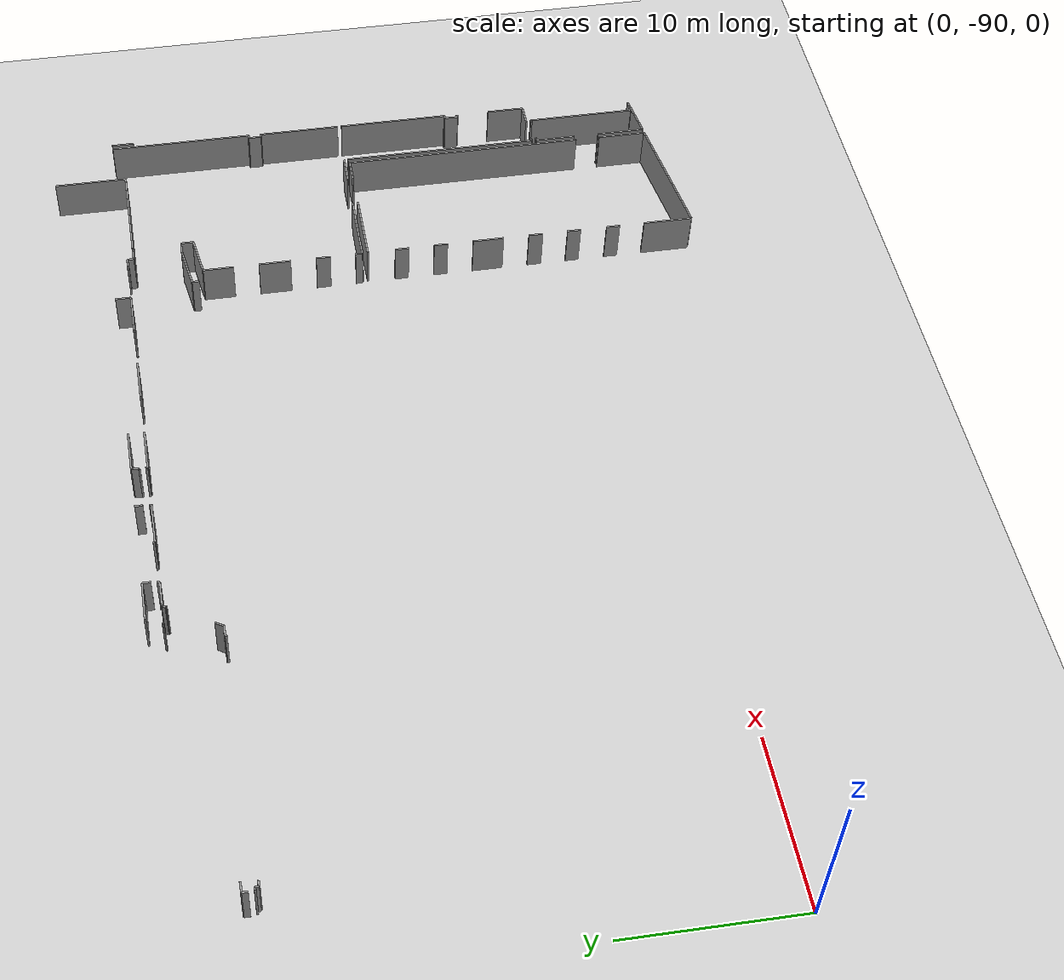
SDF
<sdf version="1.6">
 <world name="default">
  <model name="ground_plane">
   <static>1</static>
   <link name="link">
    <collision name="collision">
     <geometry><plane><normal>0 0 1</normal><size>100 100</size></plane></geometry>
     <surface><friction><ode><mu>100</mu><mu2>50</mu2></ode></friction></surface>
    </collision>
    <visual name="visual">
     <cast_shadows>0</cast_shadows>
     <geometry><plane><normal>0 0 1</normal><size>100 100</size></plane></geometry>
     <material>
      <script><uri>file://media/materials/scripts/gazebo.material</uri><name>Gazebo/Grey</name></script>
     </material>
    </visual>
   </link>
  </model>
  <model name="0510045925_40">
   <static>1</static>
   <link name="Wall_1709">
    <collision name="Wall_1709_Collision">
     <geometry><box><size>2.58318316794 0.1 2.5</size></box></geometry>
     <pose>1.29159158397 0 1.25 0 0 0</pose>
    </collision>
    <visual name="Wall_1709_Visual">
     <pose>1.29159158397 0 1.25 0 0 0</pose>
     <geometry><box><size>2.58318316794 0.1 2.5</size></box></geometry>
     <material>
      <script><uri>file://media/materials/scripts/gazebo.material</uri><name>Gazebo/Grey</name></script>
      <ambient>1 1 1 1</ambient>
     </material>
    </visual>
    <pose>167.079820309 -160.35118398 0 0 0 3.14159265359</pose>
   </link>
   <link name="Wall_1710">
    <collision name="Wall_1710_Collision">
     <geometry><box><size>0.447196771656 0.1 2.5</size></box></geometry>
     <pose>0.223598385828 0 1.25 0 0 0</pose>
    </collision>
    <visual name="Wall_1710_Visual">
     <pose>0.223598385828 0 1.25 0 0 0</pose>
     <geometry><box><size>0.447196771656 0.1 2.5</size></box></geometry>
     <material>
      <script><uri>file://media/materials/scripts/gazebo.material</uri><name>Gazebo/Grey</name></script>
      <ambient>1 1 1 1</ambient>
     </material>
    </visual>
    <pose>164.496637141 -160.35118398 0 0 0 -1.57079632679</pose>
   </link>
   <link name="Wall_1711">
    <collision name="Wall_1711_Collision">
     <geometry><box><size>0.0888302327352 0.1 2.5</size></box></geometry>
     <pose>0.0444151163676 0 1.25 0 0 0</pose>
    </collision>
    <visual name="Wall_1711_Visual">
     <pose>0.0444151163676 0 1.25 0 0 0</pose>
     <geometry><box><size>0.0888302327352 0.1 2.5</size></box></geometry>
     <material>
      <script><uri>file://media/materials/scripts/gazebo.material</uri><name>Gazebo/Grey</name></script>
      <ambient>1 1 1 1</ambient>
     </material>
    </visual>
    <pose>164.496637141 -160.798380752 0 0 0 3.14159265359</pose>
   </link>
   <link name="Wall_1712">
    <collision name="Wall_1712_Collision">
     <geometry><box><size>0.463440014213 0.1 2.5</size></box></geometry>
     <pose>0.231720007106 0 1.25 0 0 0</pose>
    </collision>
    <visual name="Wall_1712_Visual">
     <pose>0.231720007106 0 1.25 0 0 0</pose>
     <geometry><box><size>0.463440014213 0.1 2.5</size></box></geometry>
     <material>
      <script><uri>file://media/materials/scripts/gazebo.material</uri><name>Gazebo/Grey</name></script>
      <ambient>1 1 1 1</ambient>
     </material>
    </visual>
    <pose>161.87005406 -160.798380752 0 0 0 1.57079632679</pose>
   </link>
   <link name="Wall_1718">
    <collision name="Wall_1718_Collision">
     <geometry><box><size>0.171569249511 0.1 2.5</size></box></geometry>
     <pose>0.0857846247557 0 1.25 0 0 0</pose>
    </collision>
    <visual name="Wall_1718_Visual">
     <pose>0.0857846247557 0 1.25 0 0 0</pose>
     <geometry><box><size>0.171569249511 0.1 2.5</size></box></geometry>
     <material>
      <script><uri>file://media/materials/scripts/gazebo.material</uri><name>Gazebo/Grey</name></script>
      <ambient>1 1 1 1</ambient>
     </material>
    </visual>
    <pose>137.894012842 -164.340676633 0 0 0 0.0</pose>
   </link>
   <link name="Wall_1719">
    <collision name="Wall_1719_Collision">
     <geometry><box><size>0.206086139946 0.1 2.5</size></box></geometry>
     <pose>0.103043069973 0 1.25 0 0 0</pose>
    </collision>
    <visual name="Wall_1719_Visual">
     <pose>0.103043069973 0 1.25 0 0 0</pose>
     <geometry><box><size>0.206086139946 0.1 2.5</size></box></geometry>
     <material>
      <script><uri>file://media/materials/scripts/gazebo.material</uri><name>Gazebo/Grey</name></script>
      <ambient>1 1 1 1</ambient>
     </material>
    </visual>
    <pose>138.065582092 -164.340676633 0 0 0 -1.57079632679</pose>
   </link>
   <link name="Wall_1720">
    <collision name="Wall_1720_Collision">
     <geometry><box><size>0.311921017233 0.1 2.5</size></box></geometry>
     <pose>0.155960508617 0 1.25 0 0 0</pose>
    </collision>
    <visual name="Wall_1720_Visual">
     <pose>0.155960508617 0 1.25 0 0 0</pose>
     <geometry><box><size>0.311921017233 0.1 2.5</size></box></geometry>
     <material>
      <script><uri>file://media/materials/scripts/gazebo.material</uri><name>Gazebo/Grey</name></script>
      <ambient>1 1 1 1</ambient>
     </material>
    </visual>
    <pose>138.065582092 -164.546762773 0 0 0 0.0</pose>
   </link>
   <link name="Wall_1721">
    <collision name="Wall_1721_Collision">
     <geometry><box><size>0.0609121595898 0.1 2.5</size></box></geometry>
     <pose>0.0304560797949 0 1.25 0 0 0</pose>
    </collision>
    <visual name="Wall_1721_Visual">
     <pose>0.0304560797949 0 1.25 0 0 0</pose>
     <geometry><box><size>0.0609121595898 0.1 2.5</size></box></geometry>
     <material>
      <script><uri>file://media/materials/scripts/gazebo.material</uri><name>Gazebo/Grey</name></script>
      <ambient>1 1 1 1</ambient>
     </material>
    </visual>
    <pose>138.377503109 -164.546762773 0 0 0 1.57079632679</pose>
   </link>
   <link name="Wall_1722">
    <collision name="Wall_1722_Collision">
     <geometry><box><size>0.108626684602 0.1 2.5</size></box></geometry>
     <pose>0.054313342301 0 1.25 0 0 0</pose>
    </collision>
    <visual name="Wall_1722_Visual">
     <pose>0.054313342301 0 1.25 0 0 0</pose>
     <geometry><box><size>0.108626684602 0.1 2.5</size></box></geometry>
     <material>
      <script><uri>file://media/materials/scripts/gazebo.material</uri><name>Gazebo/Grey</name></script>
      <ambient>1 1 1 1</ambient>
     </material>
    </visual>
    <pose>152.666988148 -164.485850613 0 0 0 1.57079632679</pose>
   </link>
   <link name="Wall_1723">
    <collision name="Wall_1723_Collision">
     <geometry><box><size>0.621811629146 0.1 2.5</size></box></geometry>
     <pose>0.310905814573 0 1.25 0 0 0</pose>
    </collision>
    <visual name="Wall_1723_Visual">
     <pose>0.310905814573 0 1.25 0 0 0</pose>
     <geometry><box><size>0.621811629146 0.1 2.5</size></box></geometry>
     <material>
      <script><uri>file://media/materials/scripts/gazebo.material</uri><name>Gazebo/Grey</name></script>
      <ambient>1 1 1 1</ambient>
     </material>
    </visual>
    <pose>152.666988148 -164.377223928 0 0 0 0.0</pose>
   </link>
   <link name="Wall_1724">
    <collision name="Wall_1724_Collision">
     <geometry><box><size>0.511980551243 0.1 2.5</size></box></geometry>
     <pose>0.255990275622 0 1.25 0 0 0</pose>
    </collision>
    <visual name="Wall_1724_Visual">
     <pose>0.255990275622 0 1.25 0 0 0</pose>
     <geometry><box><size>0.511980551243 0.1 2.5</size></box></geometry>
     <material>
      <script><uri>file://media/materials/scripts/gazebo.material</uri><name>Gazebo/Grey</name></script>
      <ambient>1 1 1 1</ambient>
     </material>
    </visual>
    <pose>153.288799777 -164.377223928 0 0 0 1.02102494817</pose>
   </link>
   <link name="Wall_1725">
    <collision name="Wall_1725_Collision">
     <geometry><box><size>0.0917235743611 0.1 2.5</size></box></geometry>
     <pose>0.0458617871806 0 1.25 0 0 0</pose>
    </collision>
    <visual name="Wall_1725_Visual">
     <pose>0.0458617871806 0 1.25 0 0 0</pose>
     <geometry><box><size>0.0917235743611 0.1 2.5</size></box></geometry>
     <material>
      <script><uri>file://media/materials/scripts/gazebo.material</uri><name>Gazebo/Grey</name></script>
      <ambient>1 1 1 1</ambient>
     </material>
    </visual>
    <pose>154.990787036 -161.518159438 0 0 0 2.54514819379</pose>
   </link>
   <link name="Wall_1726">
    <collision name="Wall_1726_Collision">
     <geometry><box><size>0.209064128685 0.1 2.5</size></box></geometry>
     <pose>0.104532064343 0 1.25 0 0 0</pose>
    </collision>
    <visual name="Wall_1726_Visual">
     <pose>0.104532064343 0 1.25 0 0 0</pose>
     <geometry><box><size>0.209064128685 0.1 2.5</size></box></geometry>
     <material>
      <script><uri>file://media/materials/scripts/gazebo.material</uri><name>Gazebo/Grey</name></script>
      <ambient>1 1 1 1</ambient>
     </material>
    </visual>
    <pose>154.914900637 -161.466637903 0 0 0 0.979763429492</pose>
   </link>
   <link name="Wall_1727">
    <collision name="Wall_1727_Collision">
     <geometry><box><size>1.57864013604 0.1 2.5</size></box></geometry>
     <pose>0.789320068019 0 1.25 0 0 0</pose>
    </collision>
    <visual name="Wall_1727_Visual">
     <pose>0.789320068019 0 1.25 0 0 0</pose>
     <geometry><box><size>1.57864013604 0.1 2.5</size></box></geometry>
     <material>
      <script><uri>file://media/materials/scripts/gazebo.material</uri><name>Gazebo/Grey</name></script>
      <ambient>1 1 1 1</ambient>
     </material>
    </visual>
    <pose>155.031395142 -161.293038248 0 0 0 0.0</pose>
   </link>
   <link name="Wall_1728">
    <collision name="Wall_1728_Collision">
     <geometry><box><size>0.153803202964 0.1 2.5</size></box></geometry>
     <pose>0.0769016014822 0 1.25 0 0 0</pose>
    </collision>
    <visual name="Wall_1728_Visual">
     <pose>0.0769016014822 0 1.25 0 0 0</pose>
     <geometry><box><size>0.153803202964 0.1 2.5</size></box></geometry>
     <material>
      <script><uri>file://media/materials/scripts/gazebo.material</uri><name>Gazebo/Grey</name></script>
      <ambient>1 1 1 1</ambient>
     </material>
    </visual>
    <pose>156.610035278 -161.293038248 0 0 0 1.57079632679</pose>
   </link>
   <link name="Wall_1729">
    <collision name="Wall_1729_Collision">
     <geometry><box><size>0.118524910535 0.1 2.5</size></box></geometry>
     <pose>0.0592624552676 0 1.25 0 0 0</pose>
    </collision>
    <visual name="Wall_1729_Visual">
     <pose>0.0592624552676 0 1.25 0 0 0</pose>
     <geometry><box><size>0.118524910535 0.1 2.5</size></box></geometry>
     <material>
      <script><uri>file://media/materials/scripts/gazebo.material</uri><name>Gazebo/Grey</name></script>
      <ambient>1 1 1 1</ambient>
     </material>
    </visual>
    <pose>159.249054593 -161.139235045 0 0 0 -1.57079632679</pose>
   </link>
   <link name="Wall_1730">
    <collision name="Wall_1730_Collision">
     <geometry><box><size>2.59561940052 0.1 2.5</size></box></geometry>
     <pose>1.29780970026 0 1.25 0 0 0</pose>
    </collision>
    <visual name="Wall_1730_Visual">
     <pose>1.29780970026 0 1.25 0 0 0</pose>
     <geometry><box><size>2.59561940052 0.1 2.5</size></box></geometry>
     <material>
      <script><uri>file://media/materials/scripts/gazebo.material</uri><name>Gazebo/Grey</name></script>
      <ambient>1 1 1 1</ambient>
     </material>
    </visual>
    <pose>159.249054593 -161.257759955 0 0 0 0.0</pose>
   </link>
   <link name="Wall_1731">
    <collision name="Wall_1731_Collision">
     <geometry><box><size>0.11928631253 0.1 2.5</size></box></geometry>
     <pose>0.0596431562651 0 1.25 0 0 0</pose>
    </collision>
    <visual name="Wall_1731_Visual">
     <pose>0.0596431562651 0 1.25 0 0 0</pose>
     <geometry><box><size>0.11928631253 0.1 2.5</size></box></geometry>
     <material>
      <script><uri>file://media/materials/scripts/gazebo.material</uri><name>Gazebo/Grey</name></script>
      <ambient>1 1 1 1</ambient>
     </material>
    </visual>
    <pose>161.844673993 -161.257759955 0 0 0 1.57079632679</pose>
   </link>
   <link name="Wall_1732">
    <collision name="Wall_1732_Collision">
     <geometry><box><size>0.12283952184 0.1 2.5</size></box></geometry>
     <pose>0.0614197609198 0 1.25 0 0 0</pose>
    </collision>
    <visual name="Wall_1732_Visual">
     <pose>0.0614197609198 0 1.25 0 0 0</pose>
     <geometry><box><size>0.12283952184 0.1 2.5</size></box></geometry>
     <material>
      <script><uri>file://media/materials/scripts/gazebo.material</uri><name>Gazebo/Grey</name></script>
      <ambient>1 1 1 1</ambient>
     </material>
    </visual>
    <pose>164.476079287 -161.138473643 0 0 0 -1.57079632679</pose>
   </link>
   <link name="Wall_1733">
    <collision name="Wall_1733_Collision">
     <geometry><box><size>2.61846146037 0.1 2.5</size></box></geometry>
     <pose>1.30923073018 0 1.25 0 0 0</pose>
    </collision>
    <visual name="Wall_1733_Visual">
     <pose>1.30923073018 0 1.25 0 0 0</pose>
     <geometry><box><size>2.61846146037 0.1 2.5</size></box></geometry>
     <material>
      <script><uri>file://media/materials/scripts/gazebo.material</uri><name>Gazebo/Grey</name></script>
      <ambient>1 1 1 1</ambient>
     </material>
    </visual>
    <pose>164.476079287 -161.261313165 0 0 0 0.0</pose>
   </link>
   <link name="Wall_1734">
    <collision name="Wall_1734_Collision">
     <geometry><box><size>2.5400370549 0.1 2.5</size></box></geometry>
     <pose>1.27001852745 0 1.25 0 0 0</pose>
    </collision>
    <visual name="Wall_1734_Visual">
     <pose>1.27001852745 0 1.25 0 0 0</pose>
     <geometry><box><size>2.5400370549 0.1 2.5</size></box></geometry>
     <material>
      <script><uri>file://media/materials/scripts/gazebo.material</uri><name>Gazebo/Grey</name></script>
      <ambient>1 1 1 1</ambient>
     </material>
    </visual>
    <pose>169.75944773 -161.261313165 0 0 0 0.0</pose>
   </link>
   <link name="Wall_1735">
    <collision name="Wall_1735_Collision">
     <geometry><box><size>2.59536559986 0.1 2.5</size></box></geometry>
     <pose>1.29768279993 0 1.25 0 0 0</pose>
    </collision>
    <visual name="Wall_1735_Visual">
     <pose>1.29768279993 0 1.25 0 0 0</pose>
     <geometry><box><size>2.59536559986 0.1 2.5</size></box></geometry>
     <material>
      <script><uri>file://media/materials/scripts/gazebo.material</uri><name>Gazebo/Grey</name></script>
      <ambient>1 1 1 1</ambient>
     </material>
    </visual>
    <pose>174.980635009 -161.261313165 0 0 0 0.0</pose>
   </link>
   <link name="Wall_1736">
    <collision name="Wall_1736_Collision">
     <geometry><box><size>0.919519809142 0.1 2.5</size></box></geometry>
     <pose>0.459759904571 0 1.25 0 0 0</pose>
    </collision>
    <visual name="Wall_1736_Visual">
     <pose>0.459759904571 0 1.25 0 0 0</pose>
     <geometry><box><size>0.919519809142 0.1 2.5</size></box></geometry>
     <material>
      <script><uri>file://media/materials/scripts/gazebo.material</uri><name>Gazebo/Grey</name></script>
      <ambient>1 1 1 1</ambient>
     </material>
    </visual>
    <pose>177.576000609 -161.261313165 0 0 0 1.57079632679</pose>
   </link>
   <link name="Wall_1746">
    <collision name="Wall_1746_Collision">
     <geometry><box><size>0.548717037639 0.1 2.5</size></box></geometry>
     <pose>0.274358518819 0 1.25 0 0 0</pose>
    </collision>
    <visual name="Wall_1746_Visual">
     <pose>0.274358518819 0 1.25 0 0 0</pose>
     <geometry><box><size>0.548717037639 0.1 2.5</size></box></geometry>
     <material>
      <script><uri>file://media/materials/scripts/gazebo.material</uri><name>Gazebo/Grey</name></script>
      <ambient>1 1 1 1</ambient>
     </material>
    </visual>
    <pose>180.211974315 -161.271972793 0 0 0 0.0</pose>
   </link>
   <link name="Wall_1747">
    <collision name="Wall_1747_Collision">
     <geometry><box><size>0.387299814726 0.1 2.5</size></box></geometry>
     <pose>0.193649907363 0 1.25 0 0 0</pose>
    </collision>
    <visual name="Wall_1747_Visual">
     <pose>0.193649907363 0 1.25 0 0 0</pose>
     <geometry><box><size>0.387299814726 0.1 2.5</size></box></geometry>
     <material>
      <script><uri>file://media/materials/scripts/gazebo.material</uri><name>Gazebo/Grey</name></script>
      <ambient>1 1 1 1</ambient>
     </material>
    </visual>
    <pose>180.760691353 -161.271972793 0 0 0 -1.57079632679</pose>
   </link>
   <link name="Wall_1748">
    <collision name="Wall_1748_Collision">
     <geometry><box><size>0.635009263724 0.1 2.5</size></box></geometry>
     <pose>0.317504631862 0 1.25 0 0 0</pose>
    </collision>
    <visual name="Wall_1748_Visual">
     <pose>0.317504631862 0 1.25 0 0 0</pose>
     <geometry><box><size>0.635009263724 0.1 2.5</size></box></geometry>
     <material>
      <script><uri>file://media/materials/scripts/gazebo.material</uri><name>Gazebo/Grey</name></script>
      <ambient>1 1 1 1</ambient>
     </material>
    </visual>
    <pose>180.760691353 -161.659272607 0 0 0 0.0</pose>
   </link>
   <link name="Wall_1749">
    <collision name="Wall_1749_Collision">
     <geometry><box><size>0.569021090835 0.1 2.5</size></box></geometry>
     <pose>0.284510545418 0 1.25 0 0 0</pose>
    </collision>
    <visual name="Wall_1749_Visual">
     <pose>0.284510545418 0 1.25 0 0 0</pose>
     <geometry><box><size>0.569021090835 0.1 2.5</size></box></geometry>
     <material>
      <script><uri>file://media/materials/scripts/gazebo.material</uri><name>Gazebo/Grey</name></script>
      <ambient>1 1 1 1</ambient>
     </material>
    </visual>
    <pose>181.395700617 -164.582802467 0 0 0 3.14159265359</pose>
   </link>
   <link name="Wall_1750">
    <collision name="Wall_1750_Collision">
     <geometry><box><size>2.52662034332 0.1 2.5</size></box></geometry>
     <pose>1.26331017166 0 1.25 0 0 0</pose>
    </collision>
    <visual name="Wall_1750_Visual">
     <pose>1.26331017166 0 1.25 0 0 0</pose>
     <geometry><box><size>2.52662034332 0.1 2.5</size></box></geometry>
     <material>
      <script><uri>file://media/materials/scripts/gazebo.material</uri><name>Gazebo/Grey</name></script>
      <ambient>1 1 1 1</ambient>
     </material>
    </visual>
    <pose>180.826679526 -164.582802467 0 0 0 -2.99135665802</pose>
   </link>
   <link name="Wall_1751">
    <collision name="Wall_1751_Collision">
     <geometry><box><size>0.414456485876 0.1 2.5</size></box></geometry>
     <pose>0.207228242938 0 1.25 0 0 0</pose>
    </collision>
    <visual name="Wall_1751_Visual">
     <pose>0.207228242938 0 1.25 0 0 0</pose>
     <geometry><box><size>0.414456485876 0.1 2.5</size></box></geometry>
     <material>
      <script><uri>file://media/materials/scripts/gazebo.material</uri><name>Gazebo/Grey</name></script>
      <ambient>1 1 1 1</ambient>
     </material>
    </visual>
    <pose>178.328519581 -164.960965458 0 0 0 -1.57079632679</pose>
   </link>
   <link name="Wall_1757">
    <collision name="Wall_1757_Collision">
     <geometry><box><size>0.0738647146601 0.1 2.5</size></box></geometry>
     <pose>0.0369323573301 0 1.25 0 0 0</pose>
    </collision>
    <visual name="Wall_1757_Visual">
     <pose>0.0369323573301 0 1.25 0 0 0</pose>
     <geometry><box><size>0.0738647146601 0.1 2.5</size></box></geometry>
     <material>
      <script><uri>file://media/materials/scripts/gazebo.material</uri><name>Gazebo/Grey</name></script>
      <ambient>1 1 1 1</ambient>
     </material>
    </visual>
    <pose>153.861627877 -161.243293317 0 0 0 -0.537473132839</pose>
   </link>
   <link name="Wall_1758">
    <collision name="Wall_1758_Collision">
     <geometry><box><size>0.595923961321 0.1 2.5</size></box></geometry>
     <pose>0.29796198066 0 1.25 0 0 0</pose>
    </collision>
    <visual name="Wall_1758_Visual">
     <pose>0.29796198066 0 1.25 0 0 0</pose>
     <geometry><box><size>0.595923961321 0.1 2.5</size></box></geometry>
     <material>
      <script><uri>file://media/materials/scripts/gazebo.material</uri><name>Gazebo/Grey</name></script>
      <ambient>1 1 1 1</ambient>
     </material>
    </visual>
    <pose>138.458719322 -163.678256897 0 0 0 3.14159265359</pose>
   </link>
   <link name="Wall_1759">
    <collision name="Wall_1759_Collision">
     <geometry><box><size>0.330448465775 0.1 2.5</size></box></geometry>
     <pose>0.165224232887 0 1.25 0 0 0</pose>
    </collision>
    <visual name="Wall_1759_Visual">
     <pose>0.165224232887 0 1.25 0 0 0</pose>
     <geometry><box><size>0.330448465775 0.1 2.5</size></box></geometry>
     <material>
      <script><uri>file://media/materials/scripts/gazebo.material</uri><name>Gazebo/Grey</name></script>
      <ambient>1 1 1 1</ambient>
     </material>
    </visual>
    <pose>137.862795361 -163.678256897 0 0 0 -1.57079632679</pose>
   </link>
   <link name="Wall_1767">
    <collision name="Wall_1767_Collision">
     <geometry><box><size>0.471054034162 0.1 2.5</size></box></geometry>
     <pose>0.235527017081 0 1.25 0 0 0</pose>
    </collision>
    <visual name="Wall_1767_Visual">
     <pose>0.235527017081 0 1.25 0 0 0</pose>
     <geometry><box><size>0.471054034162 0.1 2.5</size></box></geometry>
     <material>
      <script><uri>file://media/materials/scripts/gazebo.material</uri><name>Gazebo/Grey</name></script>
      <ambient>1 1 1 1</ambient>
     </material>
    </visual>
    <pose>156.653435192 -160.82832923 0 0 0 1.57079632679</pose>
   </link>
   <link name="Wall_1768">
    <collision name="Wall_1768_Collision">
     <geometry><box><size>2.36091502476 0.1 2.5</size></box></geometry>
     <pose>1.18045751238 0 1.25 0 0 0</pose>
    </collision>
    <visual name="Wall_1768_Visual">
     <pose>1.18045751238 0 1.25 0 0 0</pose>
     <geometry><box><size>2.36091502476 0.1 2.5</size></box></geometry>
     <material>
      <script><uri>file://media/materials/scripts/gazebo.material</uri><name>Gazebo/Grey</name></script>
      <ambient>1 1 1 1</ambient>
     </material>
    </visual>
    <pose>156.653435192 -160.357275196 0 0 0 3.13439002605</pose>
   </link>
   <link name="Wall_1844">
    <collision name="Wall_1844_Collision">
     <geometry><box><size>1.34438212228 0.1 2.5</size></box></geometry>
     <pose>0.672191061141 0 1.25 0 0 0</pose>
    </collision>
    <visual name="Wall_1844_Visual">
     <pose>0.672191061141 0 1.25 0 0 0</pose>
     <geometry><box><size>1.34438212228 0.1 2.5</size></box></geometry>
     <material>
      <script><uri>file://media/materials/scripts/gazebo.material</uri><name>Gazebo/Grey</name></script>
      <ambient>1 1 1 1</ambient>
     </material>
    </visual>
    <pose>190.98073653 -162.375751884 0 0 0 1.57079632679</pose>
   </link>
   <link name="Wall_1966">
    <collision name="Wall_1966_Collision">
     <geometry><box><size>2.89865739448 0.1 2.5</size></box></geometry>
     <pose>1.44932869724 0 1.25 0 0 0</pose>
    </collision>
    <visual name="Wall_1966_Visual">
     <pose>1.44932869724 0 1.25 0 0 0</pose>
     <geometry><box><size>2.89865739448 0.1 2.5</size></box></geometry>
     <material>
      <script><uri>file://media/materials/scripts/gazebo.material</uri><name>Gazebo/Grey</name></script>
      <ambient>1 1 1 1</ambient>
     </material>
    </visual>
    <pose>187.529301287 -194.515545291 0 0 0 1.57079632679</pose>
   </link>
   <link name="Wall_1967">
    <collision name="Wall_1967_Collision">
     <geometry><box><size>2.43115656963 0.1 2.5</size></box></geometry>
     <pose>1.21557828482 0 1.25 0 0 0</pose>
    </collision>
    <visual name="Wall_1967_Visual">
     <pose>1.21557828482 0 1.25 0 0 0</pose>
     <geometry><box><size>2.43115656963 0.1 2.5</size></box></geometry>
     <material>
      <script><uri>file://media/materials/scripts/gazebo.material</uri><name>Gazebo/Grey</name></script>
      <ambient>1 1 1 1</ambient>
     </material>
    </visual>
    <pose>187.529301287 -190.084947083 0 0 0 1.57079632679</pose>
   </link>
   <link name="Wall_1968">
    <collision name="Wall_1968_Collision">
     <geometry><box><size>0.229435801122 0.1 2.5</size></box></geometry>
     <pose>0.114717900561 0 1.25 0 0 0</pose>
    </collision>
    <visual name="Wall_1968_Visual">
     <pose>0.114717900561 0 1.25 0 0 0</pose>
     <geometry><box><size>0.229435801122 0.1 2.5</size></box></geometry>
     <material>
      <script><uri>file://media/materials/scripts/gazebo.material</uri><name>Gazebo/Grey</name></script>
      <ambient>1 1 1 1</ambient>
     </material>
    </visual>
    <pose>187.529301287 -187.653790513 0 0 0 0.0</pose>
   </link>
   <link name="Wall_1969">
    <collision name="Wall_1969_Collision">
     <geometry><box><size>0.153295601635 0.1 2.5</size></box></geometry>
     <pose>0.0766478008173 0 1.25 0 0 0</pose>
    </collision>
    <visual name="Wall_1969_Visual">
     <pose>0.0766478008173 0 1.25 0 0 0</pose>
     <geometry><box><size>0.153295601635 0.1 2.5</size></box></geometry>
     <material>
      <script><uri>file://media/materials/scripts/gazebo.material</uri><name>Gazebo/Grey</name></script>
      <ambient>1 1 1 1</ambient>
     </material>
    </visual>
    <pose>189.265297835 -187.653790513 0 0 0 0.0</pose>
   </link>
   <link name="Wall_1970">
    <collision name="Wall_1970_Collision">
     <geometry><box><size>6.49196720895 0.1 2.5</size></box></geometry>
     <pose>3.24598360448 0 1.25 0 0 0</pose>
    </collision>
    <visual name="Wall_1970_Visual">
     <pose>3.24598360448 0 1.25 0 0 0</pose>
     <geometry><box><size>6.49196720895 0.1 2.5</size></box></geometry>
     <material>
      <script><uri>file://media/materials/scripts/gazebo.material</uri><name>Gazebo/Grey</name></script>
      <ambient>1 1 1 1</ambient>
     </material>
    </visual>
    <pose>189.418593437 -187.653790513 0 0 0 -1.57079632679</pose>
   </link>
   <link name="Wall_1971">
    <collision name="Wall_1971_Collision">
     <geometry><box><size>0.731199715743 0.1 2.5</size></box></geometry>
     <pose>0.365599857872 0 1.25 0 0 0</pose>
    </collision>
    <visual name="Wall_1971_Visual">
     <pose>0.365599857872 0 1.25 0 0 0</pose>
     <geometry><box><size>0.731199715743 0.1 2.5</size></box></geometry>
     <material>
      <script><uri>file://media/materials/scripts/gazebo.material</uri><name>Gazebo/Grey</name></script>
      <ambient>1 1 1 1</ambient>
     </material>
    </visual>
    <pose>189.418593437 -194.145757722 0 0 0 0.0</pose>
   </link>
   <link name="Wall_1972">
    <collision name="Wall_1972_Collision">
     <geometry><box><size>2.64645431931 0.1 2.5</size></box></geometry>
     <pose>1.32322715966 0 1.25 0 0 0</pose>
    </collision>
    <visual name="Wall_1972_Visual">
     <pose>1.32322715966 0 1.25 0 0 0</pose>
     <geometry><box><size>2.64645431931 0.1 2.5</size></box></geometry>
     <material>
      <script><uri>file://media/materials/scripts/gazebo.material</uri><name>Gazebo/Grey</name></script>
      <ambient>1 1 1 1</ambient>
     </material>
    </visual>
    <pose>190.149793152 -194.145757722 0 0 0 -3.00140448898</pose>
   </link>
   <link name="Wall_1973">
    <collision name="Wall_1973_Collision">
     <geometry><box><size>2.95144793279 0.1 2.5</size></box></geometry>
     <pose>1.4757239664 0 1.25 0 0 0</pose>
    </collision>
    <visual name="Wall_1973_Visual">
     <pose>1.4757239664 0 1.25 0 0 0</pose>
     <geometry><box><size>2.95144793279 0.1 2.5</size></box></geometry>
     <material>
      <script><uri>file://media/materials/scripts/gazebo.material</uri><name>Gazebo/Grey</name></script>
      <ambient>1 1 1 1</ambient>
     </material>
    </visual>
    <pose>179.217837111 -195.663231898 0 0 0 1.57079632679</pose>
   </link>
   <link name="Wall_1974">
    <collision name="Wall_1974_Collision">
     <geometry><box><size>0.817238141164 0.1 2.5</size></box></geometry>
     <pose>0.408619070582 0 1.25 0 0 0</pose>
    </collision>
    <visual name="Wall_1974_Visual">
     <pose>0.408619070582 0 1.25 0 0 0</pose>
     <geometry><box><size>0.817238141164 0.1 2.5</size></box></geometry>
     <material>
      <script><uri>file://media/materials/scripts/gazebo.material</uri><name>Gazebo/Grey</name></script>
      <ambient>1 1 1 1</ambient>
     </material>
    </visual>
    <pose>179.217837111 -191.189995178 0 0 0 1.57079632679</pose>
   </link>
   <link name="Wall_1975">
    <collision name="Wall_1975_Collision">
     <geometry><box><size>0.81393873252 0.1 2.5</size></box></geometry>
     <pose>0.40696936626 0 1.25 0 0 0</pose>
    </collision>
    <visual name="Wall_1975_Visual">
     <pose>0.40696936626 0 1.25 0 0 0</pose>
     <geometry><box><size>0.81393873252 0.1 2.5</size></box></geometry>
     <material>
      <script><uri>file://media/materials/scripts/gazebo.material</uri><name>Gazebo/Grey</name></script>
      <ambient>1 1 1 1</ambient>
     </material>
    </visual>
    <pose>179.217837111 -188.758331007 0 0 0 1.57079632679</pose>
   </link>
   <link name="Wall_1976">
    <collision name="Wall_1976_Collision">
     <geometry><box><size>0.861653257532 0.1 2.5</size></box></geometry>
     <pose>0.430826628766 0 1.25 0 0 0</pose>
    </collision>
    <visual name="Wall_1976_Visual">
     <pose>0.430826628766 0 1.25 0 0 0</pose>
     <geometry><box><size>0.861653257532 0.1 2.5</size></box></geometry>
     <material>
      <script><uri>file://media/materials/scripts/gazebo.material</uri><name>Gazebo/Grey</name></script>
      <ambient>1 1 1 1</ambient>
     </material>
    </visual>
    <pose>179.217837111 -186.411436258 0 0 0 1.57079632679</pose>
   </link>
   <link name="Wall_1977">
    <collision name="Wall_1977_Collision">
     <geometry><box><size>1.86721149209 0.1 2.5</size></box></geometry>
     <pose>0.933605746047 0 1.25 0 0 0</pose>
    </collision>
    <visual name="Wall_1977_Visual">
     <pose>0.933605746047 0 1.25 0 0 0</pose>
     <geometry><box><size>1.86721149209 0.1 2.5</size></box></geometry>
     <material>
      <script><uri>file://media/materials/scripts/gazebo.material</uri><name>Gazebo/Grey</name></script>
      <ambient>1 1 1 1</ambient>
     </material>
    </visual>
    <pose>179.217837111 -183.984340499 0 0 0 1.57079632679</pose>
   </link>
   <link name="Wall_1978">
    <collision name="Wall_1978_Collision">
     <geometry><box><size>0.827136367097 0.1 2.5</size></box></geometry>
     <pose>0.413568183549 0 1.25 0 0 0</pose>
    </collision>
    <visual name="Wall_1978_Visual">
     <pose>0.413568183549 0 1.25 0 0 0</pose>
     <geometry><box><size>0.827136367097 0.1 2.5</size></box></geometry>
     <material>
      <script><uri>file://media/materials/scripts/gazebo.material</uri><name>Gazebo/Grey</name></script>
      <ambient>1 1 1 1</ambient>
     </material>
    </visual>
    <pose>179.217837111 -180.546610492 0 0 0 1.57079632679</pose>
   </link>
   <link name="Wall_1979">
    <collision name="Wall_1979_Collision">
     <geometry><box><size>0.829928174412 0.1 2.5</size></box></geometry>
     <pose>0.414964087206 0 1.25 0 0 0</pose>
    </collision>
    <visual name="Wall_1979_Visual">
     <pose>0.414964087206 0 1.25 0 0 0</pose>
     <geometry><box><size>0.829928174412 0.1 2.5</size></box></geometry>
     <material>
      <script><uri>file://media/materials/scripts/gazebo.material</uri><name>Gazebo/Grey</name></script>
      <ambient>1 1 1 1</ambient>
     </material>
    </visual>
    <pose>179.217837111 -178.154285424 0 0 0 1.57079632679</pose>
   </link>
   <link name="Wall_1980">
    <collision name="Wall_1980_Collision">
     <geometry><box><size>4.42679119819 0.1 2.5</size></box></geometry>
     <pose>2.2133955991 0 1.25 0 0 0</pose>
    </collision>
    <visual name="Wall_1980_Visual">
     <pose>2.2133955991 0 1.25 0 0 0</pose>
     <geometry><box><size>4.42679119819 0.1 2.5</size></box></geometry>
     <material>
      <script><uri>file://media/materials/scripts/gazebo.material</uri><name>Gazebo/Grey</name></script>
      <ambient>1 1 1 1</ambient>
     </material>
    </visual>
    <pose>179.217837111 -175.666531306 0 0 0 0.0</pose>
   </link>
   <link name="Wall_1981">
    <collision name="Wall_1981_Collision">
     <geometry><box><size>1.46696784346 0.1 2.5</size></box></geometry>
     <pose>0.733483921728 0 1.25 0 0 0</pose>
    </collision>
    <visual name="Wall_1981_Visual">
     <pose>0.733483921728 0 1.25 0 0 0</pose>
     <geometry><box><size>1.46696784346 0.1 2.5</size></box></geometry>
     <material>
      <script><uri>file://media/materials/scripts/gazebo.material</uri><name>Gazebo/Grey</name></script>
      <ambient>1 1 1 1</ambient>
     </material>
    </visual>
    <pose>185.743052207 -175.666531306 0 0 0 0.0</pose>
   </link>
   <link name="Wall_1982">
    <collision name="Wall_1982_Collision">
     <geometry><box><size>14.4704449126 0.1 2.5</size></box></geometry>
     <pose>7.23522245628 0 1.25 0 0 0</pose>
    </collision>
    <visual name="Wall_1982_Visual">
     <pose>7.23522245628 0 1.25 0 0 0</pose>
     <geometry><box><size>14.4704449126 0.1 2.5</size></box></geometry>
     <material>
      <script><uri>file://media/materials/scripts/gazebo.material</uri><name>Gazebo/Grey</name></script>
      <ambient>1 1 1 1</ambient>
     </material>
    </visual>
    <pose>187.21002005 -175.666531306 0 0 0 -1.57079632679</pose>
   </link>
   <link name="Wall_1983">
    <collision name="Wall_1983_Collision">
     <geometry><box><size>2.91236263039 0.1 2.5</size></box></geometry>
     <pose>1.4561813152 0 1.25 0 0 0</pose>
    </collision>
    <visual name="Wall_1983_Visual">
     <pose>1.4561813152 0 1.25 0 0 0</pose>
     <geometry><box><size>2.91236263039 0.1 2.5</size></box></geometry>
     <material>
      <script><uri>file://media/materials/scripts/gazebo.material</uri><name>Gazebo/Grey</name></script>
      <ambient>1 1 1 1</ambient>
     </material>
    </visual>
    <pose>187.21002005 -191.629324129 0 0 0 -1.57079632679</pose>
   </link>
   <link name="Wall_1984">
    <collision name="Wall_1984_Collision">
     <geometry><box><size>8.0704926514 0.1 2.5</size></box></geometry>
     <pose>4.0352463257 0 1.25 0 0 0</pose>
    </collision>
    <visual name="Wall_1984_Visual">
     <pose>4.0352463257 0 1.25 0 0 0</pose>
     <geometry><box><size>8.0704926514 0.1 2.5</size></box></geometry>
     <material>
      <script><uri>file://media/materials/scripts/gazebo.material</uri><name>Gazebo/Grey</name></script>
      <ambient>1 1 1 1</ambient>
     </material>
    </visual>
    <pose>187.21002005 -194.541686759 0 0 0 -3.00217281196</pose>
   </link>
   <link name="Wall_1985">
    <collision name="Wall_1985_Collision">
     <geometry><box><size>11.7398035583 0.1 2.5</size></box></geometry>
     <pose>5.86990177914 0 1.25 0 0 0</pose>
    </collision>
    <visual name="Wall_1985_Visual">
     <pose>5.86990177914 0 1.25 0 0 0</pose>
     <geometry><box><size>11.7398035583 0.1 2.5</size></box></geometry>
     <material>
      <script><uri>file://media/materials/scripts/gazebo.material</uri><name>Gazebo/Grey</name></script>
      <ambient>1 1 1 1</ambient>
     </material>
    </visual>
    <pose>187.537169107 -187.332986472 0 0 0 1.57079632679</pose>
   </link>
   <link name="Wall_1986">
    <collision name="Wall_1986_Collision">
     <geometry><box><size>6.65998324916 0.1 2.5</size></box></geometry>
     <pose>3.32999162458 0 1.25 0 0 0</pose>
    </collision>
    <visual name="Wall_1986_Visual">
     <pose>3.32999162458 0 1.25 0 0 0</pose>
     <geometry><box><size>6.65998324916 0.1 2.5</size></box></geometry>
     <material>
      <script><uri>file://media/materials/scripts/gazebo.material</uri><name>Gazebo/Grey</name></script>
      <ambient>1 1 1 1</ambient>
     </material>
    </visual>
    <pose>190.650795665 -175.593182914 0 0 0 -1.57079632679</pose>
   </link>
   <link name="Wall_1987">
    <collision name="Wall_1987_Collision">
     <geometry><box><size>0.216491967209 0.1 2.5</size></box></geometry>
     <pose>0.108245983604 0 1.25 0 0 0</pose>
    </collision>
    <visual name="Wall_1987_Visual">
     <pose>0.108245983604 0 1.25 0 0 0</pose>
     <geometry><box><size>0.216491967209 0.1 2.5</size></box></geometry>
     <material>
      <script><uri>file://media/materials/scripts/gazebo.material</uri><name>Gazebo/Grey</name></script>
      <ambient>1 1 1 1</ambient>
     </material>
    </visual>
    <pose>190.650795665 -182.253166163 0 0 0 3.14159265359</pose>
   </link>
   <link name="Wall_1988">
    <collision name="Wall_1988_Collision">
     <geometry><box><size>0.80835511789 0.1 2.5</size></box></geometry>
     <pose>0.404177558945 0 1.25 0 0 0</pose>
    </collision>
    <visual name="Wall_1988_Visual">
     <pose>0.404177558945 0 1.25 0 0 0</pose>
     <geometry><box><size>0.80835511789 0.1 2.5</size></box></geometry>
     <material>
      <script><uri>file://media/materials/scripts/gazebo.material</uri><name>Gazebo/Grey</name></script>
      <ambient>1 1 1 1</ambient>
     </material>
    </visual>
    <pose>190.434303698 -182.253166163 0 0 0 -1.57079632679</pose>
   </link>
   <link name="Wall_1989">
    <collision name="Wall_1989_Collision">
     <geometry><box><size>0.186289688079 0.1 2.5</size></box></geometry>
     <pose>0.0931448440395 0 1.25 0 0 0</pose>
    </collision>
    <visual name="Wall_1989_Visual">
     <pose>0.0931448440395 0 1.25 0 0 0</pose>
     <geometry><box><size>0.186289688079 0.1 2.5</size></box></geometry>
     <material>
      <script><uri>file://media/materials/scripts/gazebo.material</uri><name>Gazebo/Grey</name></script>
      <ambient>1 1 1 1</ambient>
     </material>
    </visual>
    <pose>190.434303698 -183.061521281 0 0 0 0.0</pose>
   </link>
   <link name="Wall_1990">
    <collision name="Wall_1990_Collision">
     <geometry><box><size>2.2524809015 0.1 2.5</size></box></geometry>
     <pose>1.12624045075 0 1.25 0 0 0</pose>
    </collision>
    <visual name="Wall_1990_Visual">
     <pose>1.12624045075 0 1.25 0 0 0</pose>
     <geometry><box><size>2.2524809015 0.1 2.5</size></box></geometry>
     <material>
      <script><uri>file://media/materials/scripts/gazebo.material</uri><name>Gazebo/Grey</name></script>
      <ambient>1 1 1 1</ambient>
     </material>
    </visual>
    <pose>190.620593386 -185.074921956 0 0 0 -1.57079632679</pose>
   </link>
   <link name="Wall_1991">
    <collision name="Wall_1991_Collision">
     <geometry><box><size>1.36950838811 0.1 2.5</size></box></geometry>
     <pose>0.684754194056 0 1.25 0 0 0</pose>
    </collision>
    <visual name="Wall_1991_Visual">
     <pose>0.684754194056 0 1.25 0 0 0</pose>
     <geometry><box><size>1.36950838811 0.1 2.5</size></box></geometry>
     <material>
      <script><uri>file://media/materials/scripts/gazebo.material</uri><name>Gazebo/Grey</name></script>
      <ambient>1 1 1 1</ambient>
     </material>
    </visual>
    <pose>190.620593386 -187.327402858 0 0 0 3.14159265359</pose>
   </link>
   <link name="Wall_1992">
    <collision name="Wall_1992_Collision">
     <geometry><box><size>0.209459983555 0.1 2.5</size></box></geometry>
     <pose>0.104729991777 0 1.25 0 0 0</pose>
    </collision>
    <visual name="Wall_1992_Visual">
     <pose>0.104729991777 0 1.25 0 0 0</pose>
     <geometry><box><size>0.209459983555 0.1 2.5</size></box></geometry>
     <material>
      <script><uri>file://media/materials/scripts/gazebo.material</uri><name>Gazebo/Grey</name></script>
      <ambient>1 1 1 1</ambient>
     </material>
    </visual>
    <pose>187.746554656 -187.327402858 0 0 0 -3.11493230522</pose>
   </link>
   <link name="Wall_1993">
    <collision name="Wall_1993_Collision">
     <geometry><box><size>0.412679881221 0.1 2.5</size></box></geometry>
     <pose>0.206339940611 0 1.25 0 0 0</pose>
    </collision>
    <visual name="Wall_1993_Visual">
     <pose>0.206339940611 0 1.25 0 0 0</pose>
     <geometry><box><size>0.412679881221 0.1 2.5</size></box></geometry>
     <material>
      <script><uri>file://media/materials/scripts/gazebo.material</uri><name>Gazebo/Grey</name></script>
      <ambient>1 1 1 1</ambient>
     </material>
    </visual>
    <pose>179.189665237 -175.325677013 0 0 0 1.57079632679</pose>
   </link>
   <link name="Wall_1994">
    <collision name="Wall_1994_Collision">
     <geometry><box><size>0.853024034923 0.1 2.5</size></box></geometry>
     <pose>0.426512017461 0 1.25 0 0 0</pose>
    </collision>
    <visual name="Wall_1994_Visual">
     <pose>0.426512017461 0 1.25 0 0 0</pose>
     <geometry><box><size>0.853024034923 0.1 2.5</size></box></geometry>
     <material>
      <script><uri>file://media/materials/scripts/gazebo.material</uri><name>Gazebo/Grey</name></script>
      <ambient>1 1 1 1</ambient>
     </material>
    </visual>
    <pose>179.189665237 -173.376741707 0 0 0 1.57079632679</pose>
   </link>
   <link name="Wall_1995">
    <collision name="Wall_1995_Collision">
     <geometry><box><size>1.9164488211 0.1 2.5</size></box></geometry>
     <pose>0.958224410548 0 1.25 0 0 0</pose>
    </collision>
    <visual name="Wall_1995_Visual">
     <pose>0.958224410548 0 1.25 0 0 0</pose>
     <geometry><box><size>1.9164488211 0.1 2.5</size></box></geometry>
     <material>
      <script><uri>file://media/materials/scripts/gazebo.material</uri><name>Gazebo/Grey</name></script>
      <ambient>1 1 1 1</ambient>
     </material>
    </visual>
    <pose>179.189665237 -170.972488008 0 0 0 1.57079632679</pose>
   </link>
   <link name="Wall_1996">
    <collision name="Wall_1996_Collision">
     <geometry><box><size>1.83218700033 0.1 2.5</size></box></geometry>
     <pose>0.916093500165 0 1.25 0 0 0</pose>
    </collision>
    <visual name="Wall_1996_Visual">
     <pose>0.916093500165 0 1.25 0 0 0</pose>
     <geometry><box><size>1.83218700033 0.1 2.5</size></box></geometry>
     <material>
      <script><uri>file://media/materials/scripts/gazebo.material</uri><name>Gazebo/Grey</name></script>
      <ambient>1 1 1 1</ambient>
     </material>
    </visual>
    <pose>179.189665237 -167.523844572 0 0 0 1.57079632679</pose>
   </link>
   <link name="Wall_1997">
    <collision name="Wall_1997_Collision">
     <geometry><box><size>2.49916884599 0.1 2.5</size></box></geometry>
     <pose>1.24958442299 0 1.25 0 0 0</pose>
    </collision>
    <visual name="Wall_1997_Visual">
     <pose>1.24958442299 0 1.25 0 0 0</pose>
     <geometry><box><size>2.49916884599 0.1 2.5</size></box></geometry>
     <material>
      <script><uri>file://media/materials/scripts/gazebo.material</uri><name>Gazebo/Grey</name></script>
      <ambient>1 1 1 1</ambient>
     </material>
    </visual>
    <pose>179.189665237 -165.691657572 0 0 0 0.14614819232</pose>
   </link>
   <link name="Wall_1998">
    <collision name="Wall_1998_Collision">
     <geometry><box><size>0.764193802188 0.1 2.5</size></box></geometry>
     <pose>0.382096901094 0 1.25 0 0 0</pose>
    </collision>
    <visual name="Wall_1998_Visual">
     <pose>0.382096901094 0 1.25 0 0 0</pose>
     <geometry><box><size>0.764193802188 0.1 2.5</size></box></geometry>
     <material>
      <script><uri>file://media/materials/scripts/gazebo.material</uri><name>Gazebo/Grey</name></script>
      <ambient>1 1 1 1</ambient>
     </material>
    </visual>
    <pose>181.662191315 -165.327707419 0 0 0 1.57079632679</pose>
   </link>
   <link name="Wall_1999">
    <collision name="Wall_1999_Collision">
     <geometry><box><size>6.14045328799 0.1 2.5</size></box></geometry>
     <pose>3.07022664399 0 1.25 0 0 0</pose>
    </collision>
    <visual name="Wall_1999_Visual">
     <pose>3.07022664399 0 1.25 0 0 0</pose>
     <geometry><box><size>6.14045328799 0.1 2.5</size></box></geometry>
     <material>
      <script><uri>file://media/materials/scripts/gazebo.material</uri><name>Gazebo/Grey</name></script>
      <ambient>1 1 1 1</ambient>
     </material>
    </visual>
    <pose>181.662191315 -161.659272607 0 0 0 0.0</pose>
   </link>
   <link name="Wall_2000">
    <collision name="Wall_2000_Collision">
     <geometry><box><size>4.34455978275 0.1 2.5</size></box></geometry>
     <pose>2.17227989137 0 1.25 0 0 0</pose>
    </collision>
    <visual name="Wall_2000_Visual">
     <pose>2.17227989137 0 1.25 0 0 0</pose>
     <geometry><box><size>4.34455978275 0.1 2.5</size></box></geometry>
     <material>
      <script><uri>file://media/materials/scripts/gazebo.material</uri><name>Gazebo/Grey</name></script>
      <ambient>1 1 1 1</ambient>
     </material>
    </visual>
    <pose>187.802644603 -161.659272607 0 0 0 1.57079632679</pose>
   </link>
   <link name="Wall_2002">
    <collision name="Wall_2002_Collision">
     <geometry><box><size>8.59952793076 0.1 2.5</size></box></geometry>
     <pose>4.29976396538 0 1.25 0 0 0</pose>
    </collision>
    <visual name="Wall_2002_Visual">
     <pose>4.29976396538 0 1.25 0 0 0</pose>
     <geometry><box><size>8.59952793076 0.1 2.5</size></box></geometry>
     <material>
      <script><uri>file://media/materials/scripts/gazebo.material</uri><name>Gazebo/Grey</name></script>
      <ambient>1 1 1 1</ambient>
     </material>
    </visual>
    <pose>190.648511459 -161.056242227 0 0 0 -1.57079632679</pose>
   </link>
   <link name="Wall_2003">
    <collision name="Wall_2003_Collision">
     <geometry><box><size>0.222329382503 0.1 2.5</size></box></geometry>
     <pose>0.111164691252 0 1.25 0 0 0</pose>
    </collision>
    <visual name="Wall_2003_Visual">
     <pose>0.111164691252 0 1.25 0 0 0</pose>
     <geometry><box><size>0.222329382503 0.1 2.5</size></box></geometry>
     <material>
      <script><uri>file://media/materials/scripts/gazebo.material</uri><name>Gazebo/Grey</name></script>
      <ambient>1 1 1 1</ambient>
     </material>
    </visual>
    <pose>190.648511459 -169.655770158 0 0 0 3.14159265359</pose>
   </link>
   <link name="Wall_2004">
    <collision name="Wall_2004_Collision">
     <geometry><box><size>0.75150376894 0.1 2.5</size></box></geometry>
     <pose>0.37575188447 0 1.25 0 0 0</pose>
    </collision>
    <visual name="Wall_2004_Visual">
     <pose>0.37575188447 0 1.25 0 0 0</pose>
     <geometry><box><size>0.75150376894 0.1 2.5</size></box></geometry>
     <material>
      <script><uri>file://media/materials/scripts/gazebo.material</uri><name>Gazebo/Grey</name></script>
      <ambient>1 1 1 1</ambient>
     </material>
    </visual>
    <pose>190.426182077 -169.655770158 0 0 0 -1.57079632679</pose>
   </link>
   <link name="Wall_2005">
    <collision name="Wall_2005_Collision">
     <geometry><box><size>0.214461561889 0.1 2.5</size></box></geometry>
     <pose>0.107230780945 0 1.25 0 0 0</pose>
    </collision>
    <visual name="Wall_2005_Visual">
     <pose>0.107230780945 0 1.25 0 0 0</pose>
     <geometry><box><size>0.214461561889 0.1 2.5</size></box></geometry>
     <material>
      <script><uri>file://media/materials/scripts/gazebo.material</uri><name>Gazebo/Grey</name></script>
      <ambient>1 1 1 1</ambient>
     </material>
    </visual>
    <pose>190.426182077 -170.407273927 0 0 0 0.0</pose>
   </link>
   <link name="Wall_2006">
    <collision name="Wall_2006_Collision">
     <geometry><box><size>4.94073754473 0.1 2.5</size></box></geometry>
     <pose>2.47036877237 0 1.25 0 0 0</pose>
    </collision>
    <visual name="Wall_2006_Visual">
     <pose>2.47036877237 0 1.25 0 0 0</pose>
     <geometry><box><size>4.94073754473 0.1 2.5</size></box></geometry>
     <material>
      <script><uri>file://media/materials/scripts/gazebo.material</uri><name>Gazebo/Grey</name></script>
      <ambient>1 1 1 1</ambient>
     </material>
    </visual>
    <pose>190.640643638 -170.407273927 0 0 0 -1.57079632679</pose>
   </link>
   <link name="Wall_2007">
    <collision name="Wall_2007_Collision">
     <geometry><box><size>1.79868531256 0.1 2.5</size></box></geometry>
     <pose>0.899342656278 0 1.25 0 0 0</pose>
    </collision>
    <visual name="Wall_2007_Visual">
     <pose>0.899342656278 0 1.25 0 0 0</pose>
     <geometry><box><size>1.79868531256 0.1 2.5</size></box></geometry>
     <material>
      <script><uri>file://media/materials/scripts/gazebo.material</uri><name>Gazebo/Grey</name></script>
      <ambient>1 1 1 1</ambient>
     </material>
    </visual>
    <pose>187.509251034 -175.348011472 0 0 0 3.14159265359</pose>
   </link>
   <link name="Wall_2008">
    <collision name="Wall_2008_Collision">
     <geometry><box><size>4.41542665559 0.1 2.5</size></box></geometry>
     <pose>2.20771332779 0 1.25 0 0 0</pose>
    </collision>
    <visual name="Wall_2008_Visual">
     <pose>2.20771332779 0 1.25 0 0 0</pose>
     <geometry><box><size>4.41542665559 0.1 2.5</size></box></geometry>
     <material>
      <script><uri>file://media/materials/scripts/gazebo.material</uri><name>Gazebo/Grey</name></script>
      <ambient>1 1 1 1</ambient>
     </material>
    </visual>
    <pose>183.605035405 -175.348011472 0 0 0 3.13653435334</pose>
   </link>
   <pose>-133.95 101.083118449 0 0 0 0</pose>
  </model>
 </world>
</sdf>
